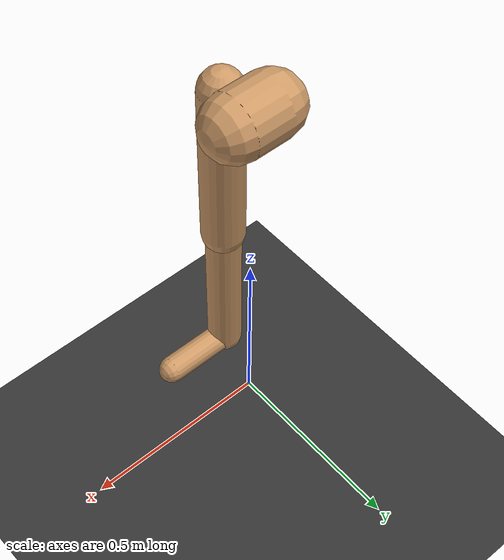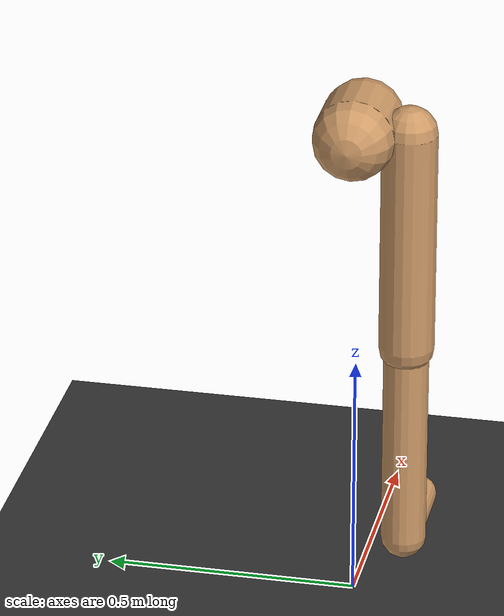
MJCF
<mujoco model="sprinter_scaled">
    <compiler angle="degree" coordinate="local" inertiafromgeom="true"/>
    <option gravity="0 0 -9.81"/>

    <default>
        <geom contype="1" conaffinity="1" rgba="0.8 0.6 0.4 1" type="capsule"/>
        <joint damping="2.0" armature="0.05"/>
    </default>

    <worldbody>
        <light pos="0 0 3" dir="0 0 -1"/>
        <geom name="track" type="plane" size="50 5 0.1" rgba="0.2 0.2 0.2 1"/>

        <body name="pelvis" pos="0 0 1.0">
            <freejoint name="root"/>
            <geom name="pelvis_geom" size="0.08" fromto="-0.05 0 0 0.05 0 0"/>

            <body name="r_thigh" pos="0 -0.1 0">
                <joint name="r_hip" type="ball"/>
                <!-- Length updated by mesh_to_mujoco.py -->
                <geom name="r_thigh_geom" size="0.055" fromto="0 0 0 0 0 -0.45"/>

                <body name="r_shank" pos="0 0 -0.45">
                    <joint name="r_knee" type="hinge" axis="0 1 0" range="-150 0"/>
                    <!-- Length updated by mesh_to_mujoco.py -->
                    <geom name="r_shank_geom" size="0.045" fromto="0 0 0 0 0 -0.42"/>

                    <body name="r_foot" pos="0 0 -0.42">
                        <joint name="r_ankle" type="ball"/>
                        <geom name="r_foot_geom" size="0.035" fromto="0 0 0 0.18 0 0"/>
                    </body>
                </body>
            </body>
        </body>
    </worldbody>
</mujoco>
